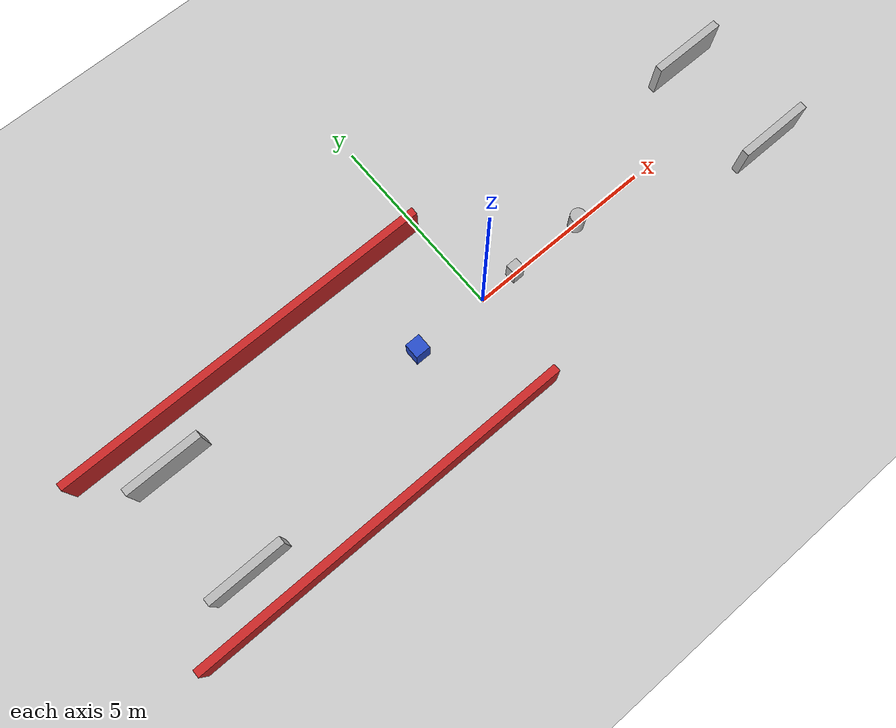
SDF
<?xml version="1.0" ?>
<sdf version="1.7">
  <world name="swarm_bottleneck">
    <include>
      <uri>model://sun</uri>
    </include>

    <!-- 地面 -->
    <model name="ground_plane">
      <static>true</static>
      <link name="link">
        <collision name="collision">
          <geometry>
            <plane>
              <normal>0 0 1</normal>
            </plane>
          </geometry>
        </collision>
        <visual name="visual">
          <geometry>
            <plane>
              <normal>0 0 1</normal>
              <size>30 30</size>
            </plane>
          </geometry>
          <material>
            <script>
              <uri>file://media/materials/scripts/gazebo.material</uri>
              <name>Gazebo/Grey</name>
            </script>
          </material>
        </visual>
      </link>
    </model>

    <!-- 狭窄走廊墙壁 -->
    <!-- 左墙 -->
    <model name="wall_left">
      <static>true</static>
      <pose>-5 2.5 0.5 0 0 0</pose>
      <link name="wall_link">
        <collision name="collision">
          <geometry>
            <box>
              <size>10 0.2 1</size>
            </box>
          </geometry>
        </collision>
        <visual name="visual">
          <geometry>
            <box>
              <size>10 0.2 1</size>
            </box>
          </geometry>
          <material>
            <script>
              <uri>file://media/materials/scripts/gazebo.material</uri>
              <name>Gazebo/Red</name>
            </script>
          </material>
        </visual>
      </link>
    </model>

    <!-- 右墙 -->
    <model name="wall_right">
      <static>true</static>
      <pose>-5 -2.5 0.5 0 0 0</pose>
      <link name="wall_link">
        <collision name="collision">
          <geometry>
            <box>
              <size>10 0.2 1</size>
            </box>
          </geometry>
        </collision>
        <visual name="visual">
          <geometry>
            <box>
              <size>10 0.2 1</size>
            </box>
          </geometry>
          <material>
            <script>
              <uri>file://media/materials/scripts/gazebo.material</uri>
              <name>Gazebo/Red</name>
            </script>
          </material>
        </visual>
      </link>
    </model>

    <!-- 入口墙（带门开口） -->
    <!-- 左入口段 -->
    <model name="wall_entry_left">
      <static>true</static>
      <pose>-8 1.5 0.5 0 0 0</pose>
      <link name="link">
        <collision>
          <geometry>
            <box><size>2 0.2 1</size></box>
          </geometry>
        </collision>
        <visual>
          <geometry>
            <box><size>2 0.2 1</size></box>
          </geometry>
        </visual>
      </link>
    </model>

    <!-- 右入口段 -->
    <model name="wall_entry_right">
      <static>true</static>
      <pose>-8 -1.5 0.5 0 0 0</pose>
      <link name="link">
        <collision>
          <geometry>
            <box><size>2 0.2 1</size></box>
          </geometry>
        </collision>
        <visual>
          <geometry>
            <box><size>2 0.2 1</size></box>
          </geometry>
        </visual>
      </link>
    </model>

    <!-- 出口墙（带门开口） -->
    <!-- 左出口段 -->
    <model name="wall_exit_left">
      <static>true</static>
      <pose>8 1.5 0.5 0 0 0</pose>
      <link name="link">
        <collision>
          <geometry>
            <box><size>2 0.2 1</size></box>
          </geometry>
        </collision>
        <visual>
          <geometry>
            <box><size>2 0.2 1</size></box>
          </geometry>
        </visual>
      </link>
    </model>

    <!-- 右出口段 -->
    <model name="wall_exit_right">
      <static>true</static>
      <pose>8 -1.5 0.5 0 0 0</pose>
      <link name="link">
        <collision>
          <geometry>
            <box><size>2 0.2 1</size></box>
          </geometry>
        </collision>
        <visual>
          <geometry>
            <box><size>2 0.2 1</size></box>
          </geometry>
        </visual>
      </link>
    </model>

    <!-- 随机障碍物（在走廊内部） -->
    <model name="obstacle_1">
      <static>true</static>
      <pose>-2 0 0.3 0 0 0</pose>
      <link name="link">
        <collision>
          <geometry>
            <box><size>0.4 0.4 0.6</size></box>
          </geometry>
        </collision>
        <visual>
          <geometry>
            <box><size>0.4 0.4 0.6</size></box>
          </geometry>
          <material>
            <script>
              <uri>file://media/materials/scripts/gazebo.material</uri>
              <name>Gazebo/Blue</name>
            </script>
          </material>
        </visual>
      </link>
    </model>

    <model name="obstacle_2">
      <static>true</static>
      <pose>1 0 0.3 0 0 0</pose>
      <link name="link">
        <collision>
          <geometry>
            <box><size>0.3 0.3 0.6</size></box>
          </geometry>
        </collision>
        <visual>
          <geometry>
            <box><size>0.3 0.3 0.6</size></box>
          </geometry>
        </visual>
      </link>
    </model>

    <model name="obstacle_3">
      <static>true</static>
      <pose>3 0 0.3 0 0 0</pose>
      <link name="link">
        <collision>
          <geometry>
            <cylinder>
              <radius>0.2</radius>
              <length>0.6</length>
            </cylinder>
          </geometry>
        </collision>
        <visual>
          <geometry>
            <cylinder>
              <radius>0.2</radius>
              <length>0.6</length>
            </cylinder>
          </geometry>
        </visual>
      </link>
    </model>

    <!-- 物理参数 -->
    <gravity>0 0 -9.81</gravity>
    <magnetic_field>0 0 0.5</magnetic_field>

    <!-- 光照 -->
    <scene>
      <ambient>0.4 0.4 0.4 1</ambient>
      <background>0.6 0.7 0.8 1</background>
    </scene>
  </world>
</sdf>
